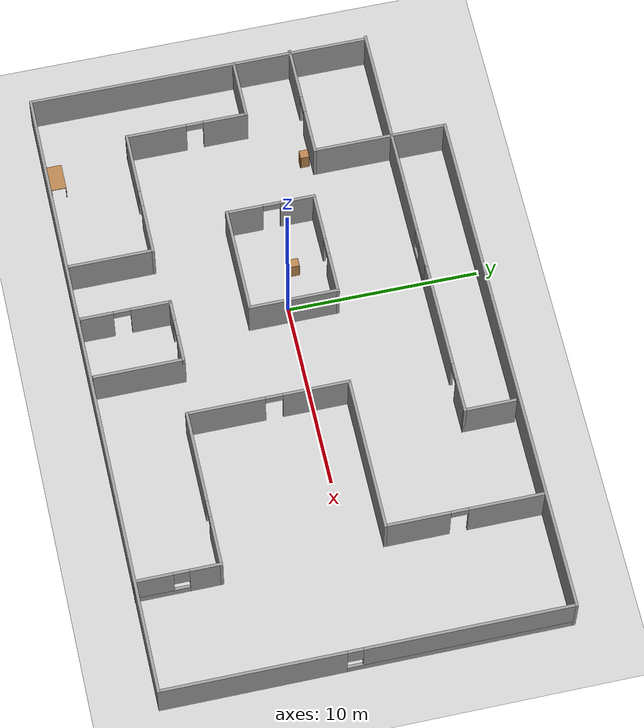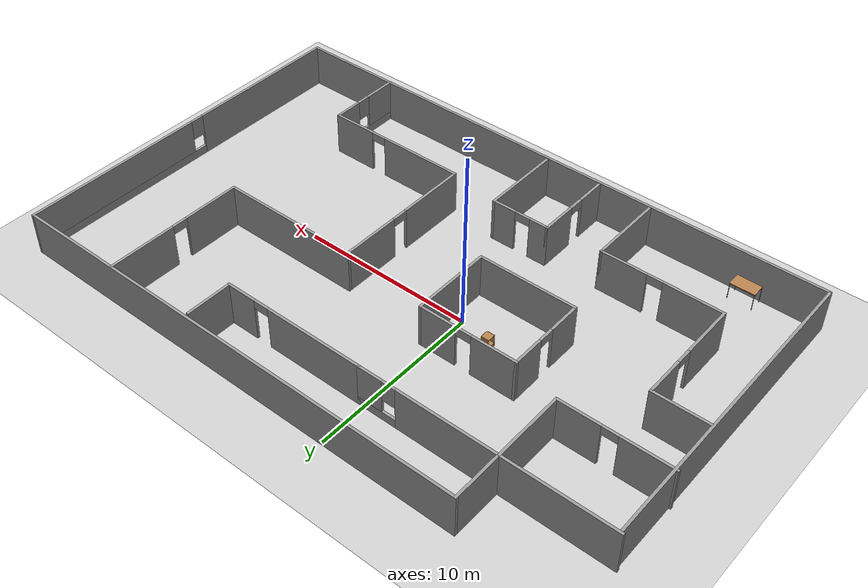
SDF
<sdf version="1.6">
 <world name="default">
  <model name="ground_plane">
   <static>1</static>
   <link name="link">
    <collision name="collision">
     <geometry><plane><normal>0 0 1</normal><size>100 100</size></plane></geometry>
     <surface><friction><ode><mu>100</mu><mu2>50</mu2></ode></friction></surface>
    </collision>
    <visual name="visual">
     <cast_shadows>0</cast_shadows>
     <geometry><plane><normal>0 0 1</normal><size>100 100</size></plane></geometry>
     <material>
      <script><uri>file://media/materials/scripts/gazebo.material</uri><name>Gazebo/Grey</name></script>
     </material>
    </visual>
   </link>
  </model>
  <model name="myworld2.world">
   <pose>3.1644 -0.391877 0 0 -0 0</pose>
   <link name="Wall_11">
    <collision name="Wall_11_Collision">
     <geometry><box><size>18 0.15 2.5</size></box></geometry>
     <pose>0 0 1.25 0 -0 0</pose>
    </collision>
    <visual name="Wall_11_Visual">
     <pose>0 0 1.25 0 -0 0</pose>
     <geometry><box><size>18 0.15 2.5</size></box></geometry>
     <material>
      <script><uri>file://media/materials/scripts/gazebo.material</uri><name>Gazebo/Grey</name></script>
      <ambient>1 1 1 1</ambient>
     </material>
    </visual>
    <pose>-16.75 -1.4938 0 0 0 -1.5708</pose>
   </link>
   <link name="Wall_12">
    <collision name="Wall_12_Collision">
     <geometry><box><size>33.75 0.15 2.5</size></box></geometry>
     <pose>0 0 1.25 0 -0 0</pose>
    </collision>
    <visual name="Wall_12_Visual">
     <pose>0 0 1.25 0 -0 0</pose>
     <geometry><box><size>33.75 0.15 2.5</size></box></geometry>
     <material>
      <script><uri>file://media/materials/scripts/gazebo.material</uri><name>Gazebo/Grey</name></script>
      <ambient>1 1 1 1</ambient>
     </material>
    </visual>
    <pose>0.05 -10.4188 0 0 -0 0</pose>
   </link>
   <link name="Wall_13">
    <pose>16.85 0.006203 0 0 -0 1.5708</pose>
    <visual name="Wall_13_Visual_0">
     <pose>-5.77676 0 1.25 0 -0 0</pose>
     <geometry><box><size>9.44648 0.15 2.5</size></box></geometry>
     <material>
      <script><uri>file://media/materials/scripts/gazebo.material</uri><name>Gazebo/Grey</name></script>
      <ambient>1 1 1 1</ambient>
     </material>
    </visual>
    <collision name="Wall_13_Collision_0">
     <geometry><box><size>9.44648 0.15 2.5</size></box></geometry>
     <pose>-5.77676 0 1.25 0 -0 0</pose>
    </collision>
    <visual name="Wall_13_Visual_1">
     <pose>4.72324 0 0.25 0 -0 0</pose>
     <geometry><box><size>11.5535 0.15 0.5</size></box></geometry>
     <material>
      <script><uri>file://media/materials/scripts/gazebo.material</uri><name>Gazebo/Grey</name></script>
      <ambient>1 1 1 1</ambient>
     </material>
    </visual>
    <collision name="Wall_13_Collision_1">
     <geometry><box><size>11.5535 0.15 0.5</size></box></geometry>
     <pose>4.72324 0 0.25 0 -0 0</pose>
    </collision>
    <visual name="Wall_13_Visual_2">
     <pose>5.12324 0 1.5 0 -0 0</pose>
     <geometry><box><size>10.7535 0.15 2</size></box></geometry>
     <material>
      <script><uri>file://media/materials/scripts/gazebo.material</uri><name>Gazebo/Grey</name></script>
      <ambient>1 1 1 1</ambient>
     </material>
    </visual>
    <collision name="Wall_13_Collision_2">
     <geometry><box><size>10.7535 0.15 2</size></box></geometry>
     <pose>5.12324 0 1.5 0 -0 0</pose>
    </collision>
    <visual name="Wall_13_Visual_3">
     <pose>-0.653517 0 1.9 0 -0 0</pose>
     <geometry><box><size>0.8 0.15 1.2</size></box></geometry>
     <material>
      <script><uri>file://media/materials/scripts/gazebo.material</uri><name>Gazebo/Grey</name></script>
      <ambient>1 1 1 1</ambient>
     </material>
    </visual>
    <collision name="Wall_13_Collision_3">
     <geometry><box><size>0.8 0.15 1.2</size></box></geometry>
     <pose>-0.653517 0 1.9 0 -0 0</pose>
    </collision>
   </link>
   <link name="Wall_14">
    <collision name="Wall_14_Collision">
     <geometry><box><size>27.75 0.15 2.5</size></box></geometry>
     <pose>0 0 1.25 0 -0 0</pose>
    </collision>
    <visual name="Wall_14_Visual">
     <pose>0 0 1.25 0 -0 0</pose>
     <geometry><box><size>27.75 0.15 2.5</size></box></geometry>
     <material>
      <script><uri>file://media/materials/scripts/gazebo.material</uri><name>Gazebo/Grey</name></script>
      <ambient>1 1 1 1</ambient>
     </material>
    </visual>
    <pose>3.05 10.4312 0 0 -0 3.14159</pose>
   </link>
   <link name="Wall_15">
    <collision name="Wall_15_Collision">
     <geometry><box><size>3 0.15 2.5</size></box></geometry>
     <pose>0 0 1.25 0 -0 0</pose>
    </collision>
    <visual name="Wall_15_Visual">
     <pose>0 0 1.25 0 -0 0</pose>
     <geometry><box><size>3 0.15 2.5</size></box></geometry>
     <material>
      <script><uri>file://media/materials/scripts/gazebo.material</uri><name>Gazebo/Grey</name></script>
      <ambient>1 1 1 1</ambient>
     </material>
    </visual>
    <pose>-10.75 9.0062 0 0 0 -1.5708</pose>
   </link>
   <link name="Wall_18">
    <collision name="Wall_18_Collision">
     <geometry><box><size>6.25 0.15 2.5</size></box></geometry>
     <pose>0 0 1.25 0 -0 0</pose>
    </collision>
    <visual name="Wall_18_Visual">
     <pose>0 0 1.25 0 -0 0</pose>
     <geometry><box><size>6.25 0.15 2.5</size></box></geometry>
     <material>
      <script><uri>file://media/materials/scripts/gazebo.material</uri><name>Gazebo/Grey</name></script>
      <ambient>1 1 1 1</ambient>
     </material>
    </visual>
    <pose>-13.8 7.5812 0 0 -0 3.14159</pose>
   </link>
   <link name="Wall_20">
    <collision name="Wall_20_Collision">
     <geometry><box><size>4.25 0.15 2.5</size></box></geometry>
     <pose>0 0 1.25 0 -0 0</pose>
    </collision>
    <visual name="Wall_20_Visual">
     <pose>0 0 1.25 0 -0 0</pose>
     <geometry><box><size>4.25 0.15 2.5</size></box></geometry>
     <material>
      <script><uri>file://media/materials/scripts/gazebo.material</uri><name>Gazebo/Grey</name></script>
      <ambient>1 1 1 1</ambient>
     </material>
    </visual>
    <pose>-10.75 5.5312 0 0 0 -1.5708</pose>
   </link>
   <link name="Wall_22">
    <pose>-13.8 3.4812 0 0 -0 3.14159</pose>
    <visual name="Wall_22_Visual_0">
     <pose>-1.90313 0 1.25 0 -0 0</pose>
     <geometry><box><size>2.44374 0.15 2.5</size></box></geometry>
     <material>
      <script><uri>file://media/materials/scripts/gazebo.material</uri><name>Gazebo/Grey</name></script>
      <ambient>1 1 1 1</ambient>
     </material>
    </visual>
    <collision name="Wall_22_Collision_0">
     <geometry><box><size>2.44374 0.15 2.5</size></box></geometry>
     <pose>-1.90313 0 1.25 0 -0 0</pose>
    </collision>
    <visual name="Wall_22_Visual_1">
     <pose>1.67187 0 1.25 0 -0 0</pose>
     <geometry><box><size>2.90626 0.15 2.5</size></box></geometry>
     <material>
      <script><uri>file://media/materials/scripts/gazebo.material</uri><name>Gazebo/Grey</name></script>
      <ambient>1 1 1 1</ambient>
     </material>
    </visual>
    <collision name="Wall_22_Collision_1">
     <geometry><box><size>2.90626 0.15 2.5</size></box></geometry>
     <pose>1.67187 0 1.25 0 -0 0</pose>
    </collision>
    <visual name="Wall_22_Visual_2">
     <pose>-0.231259 0 2.25 0 -0 0</pose>
     <geometry><box><size>0.9 0.15 0.5</size></box></geometry>
     <material>
      <script><uri>file://media/materials/scripts/gazebo.material</uri><name>Gazebo/Grey</name></script>
      <ambient>1 1 1 1</ambient>
     </material>
    </visual>
    <collision name="Wall_22_Collision_2">
     <geometry><box><size>0.9 0.15 0.5</size></box></geometry>
     <pose>-0.231259 0 2.25 0 -0 0</pose>
    </collision>
   </link>
   <link name="Wall_24">
    <collision name="Wall_24_Collision">
     <geometry><box><size>3.25 0.15 2.5</size></box></geometry>
     <pose>0 0 1.25 0 -0 0</pose>
    </collision>
    <visual name="Wall_24_Visual">
     <pose>0 0 1.25 0 -0 0</pose>
     <geometry><box><size>3.25 0.15 2.5</size></box></geometry>
     <material>
      <script><uri>file://media/materials/scripts/gazebo.material</uri><name>Gazebo/Grey</name></script>
      <ambient>1 1 1 1</ambient>
     </material>
    </visual>
    <pose>-15.1851 0.43675 0 0 -0 0</pose>
   </link>
   <link name="Wall_25">
    <pose>-13.6351 -2.73825 0 0 0 -1.5708</pose>
    <visual name="Wall_25_Visual_0">
     <pose>-2.06306 0 1.25 0 -0 0</pose>
     <geometry><box><size>2.37387 0.15 2.5</size></box></geometry>
     <material>
      <script><uri>file://media/materials/scripts/gazebo.material</uri><name>Gazebo/Grey</name></script>
      <ambient>1 1 1 1</ambient>
     </material>
    </visual>
    <collision name="Wall_25_Collision_0">
     <geometry><box><size>2.37387 0.15 2.5</size></box></geometry>
     <pose>-2.06306 0 1.25 0 -0 0</pose>
    </collision>
    <visual name="Wall_25_Visual_1">
     <pose>1.63694 0 1.25 0 -0 0</pose>
     <geometry><box><size>3.22613 0.15 2.5</size></box></geometry>
     <material>
      <script><uri>file://media/materials/scripts/gazebo.material</uri><name>Gazebo/Grey</name></script>
      <ambient>1 1 1 1</ambient>
     </material>
    </visual>
    <collision name="Wall_25_Collision_1">
     <geometry><box><size>3.22613 0.15 2.5</size></box></geometry>
     <pose>1.63694 0 1.25 0 -0 0</pose>
    </collision>
    <visual name="Wall_25_Visual_2">
     <pose>-0.426125 0 2.25 0 -0 0</pose>
     <geometry><box><size>0.9 0.15 0.5</size></box></geometry>
     <material>
      <script><uri>file://media/materials/scripts/gazebo.material</uri><name>Gazebo/Grey</name></script>
      <ambient>1 1 1 1</ambient>
     </material>
    </visual>
    <collision name="Wall_25_Collision_2">
     <geometry><box><size>0.9 0.15 0.5</size></box></geometry>
     <pose>-0.426125 0 2.25 0 -0 0</pose>
    </collision>
   </link>
   <link name="Wall_26">
    <pose>-10.2101 -5.91325 0 0 -0 0</pose>
    <visual name="Wall_26_Visual_0">
     <pose>-1.80938 0 1.25 0 -0 0</pose>
     <geometry><box><size>3.38123 0.15 2.5</size></box></geometry>
     <material>
      <script><uri>file://media/materials/scripts/gazebo.material</uri><name>Gazebo/Grey</name></script>
      <ambient>1 1 1 1</ambient>
     </material>
    </visual>
    <collision name="Wall_26_Collision_0">
     <geometry><box><size>3.38123 0.15 2.5</size></box></geometry>
     <pose>-1.80938 0 1.25 0 -0 0</pose>
    </collision>
    <visual name="Wall_26_Visual_1">
     <pose>2.14062 0 1.25 0 -0 0</pose>
     <geometry><box><size>2.71877 0.15 2.5</size></box></geometry>
     <material>
      <script><uri>file://media/materials/scripts/gazebo.material</uri><name>Gazebo/Grey</name></script>
      <ambient>1 1 1 1</ambient>
     </material>
    </visual>
    <collision name="Wall_26_Collision_1">
     <geometry><box><size>2.71877 0.15 2.5</size></box></geometry>
     <pose>2.14062 0 1.25 0 -0 0</pose>
    </collision>
    <visual name="Wall_26_Visual_2">
     <pose>0.331232 0 2.25 0 -0 0</pose>
     <geometry><box><size>0.9 0.15 0.5</size></box></geometry>
     <material>
      <script><uri>file://media/materials/scripts/gazebo.material</uri><name>Gazebo/Grey</name></script>
      <ambient>1 1 1 1</ambient>
     </material>
    </visual>
    <collision name="Wall_26_Collision_2">
     <geometry><box><size>0.9 0.15 0.5</size></box></geometry>
     <pose>0.331232 0 2.25 0 -0 0</pose>
    </collision>
   </link>
   <link name="Wall_27">
    <collision name="Wall_27_Collision">
     <geometry><box><size>4.5 0.15 2.5</size></box></geometry>
     <pose>0 0 1.25 0 -0 0</pose>
    </collision>
    <visual name="Wall_27_Visual">
     <pose>0 0 1.25 0 -0 0</pose>
     <geometry><box><size>4.5 0.15 2.5</size></box></geometry>
     <material>
      <script><uri>file://media/materials/scripts/gazebo.material</uri><name>Gazebo/Grey</name></script>
      <ambient>1 1 1 1</ambient>
     </material>
    </visual>
    <pose>-6.78515 -8.08825 0 0 0 -1.5708</pose>
   </link>
   <link name="Wall_29">
    <pose>-8.11483 0.547824 0 0 0 -1.5708</pose>
    <visual name="Wall_29_Visual_0">
     <pose>-1.4379 0 1.25 0 -0 0</pose>
     <geometry><box><size>1.87421 0.15 2.5</size></box></geometry>
     <material>
      <script><uri>file://media/materials/scripts/gazebo.material</uri><name>Gazebo/Grey</name></script>
      <ambient>1 1 1 1</ambient>
     </material>
    </visual>
    <collision name="Wall_29_Collision_0">
     <geometry><box><size>1.87421 0.15 2.5</size></box></geometry>
     <pose>-1.4379 0 1.25 0 -0 0</pose>
    </collision>
    <visual name="Wall_29_Visual_1">
     <pose>1.3871 0 1.25 0 -0 0</pose>
     <geometry><box><size>1.97579 0.15 2.5</size></box></geometry>
     <material>
      <script><uri>file://media/materials/scripts/gazebo.material</uri><name>Gazebo/Grey</name></script>
      <ambient>1 1 1 1</ambient>
     </material>
    </visual>
    <collision name="Wall_29_Collision_1">
     <geometry><box><size>1.97579 0.15 2.5</size></box></geometry>
     <pose>1.3871 0 1.25 0 -0 0</pose>
    </collision>
    <visual name="Wall_29_Visual_2">
     <pose>-0.050792 0 2.25 0 -0 0</pose>
     <geometry><box><size>0.9 0.15 0.5</size></box></geometry>
     <material>
      <script><uri>file://media/materials/scripts/gazebo.material</uri><name>Gazebo/Grey</name></script>
      <ambient>1 1 1 1</ambient>
     </material>
    </visual>
    <collision name="Wall_29_Collision_2">
     <geometry><box><size>0.9 0.15 0.5</size></box></geometry>
     <pose>-0.050792 0 2.25 0 -0 0</pose>
    </collision>
   </link>
   <link name="Wall_30">
    <collision name="Wall_30_Collision">
     <geometry><box><size>5.75 0.15 2.5</size></box></geometry>
     <pose>0 0 1.25 0 -0 0</pose>
    </collision>
    <visual name="Wall_30_Visual">
     <pose>0 0 1.25 0 -0 0</pose>
     <geometry><box><size>5.75 0.15 2.5</size></box></geometry>
     <material>
      <script><uri>file://media/materials/scripts/gazebo.material</uri><name>Gazebo/Grey</name></script>
      <ambient>1 1 1 1</ambient>
     </material>
    </visual>
    <pose>-5.31483 -1.75218 0 0 -0 0</pose>
   </link>
   <link name="Wall_31">
    <collision name="Wall_31_Collision">
     <geometry><box><size>4.75 0.15 2.5</size></box></geometry>
     <pose>0 0 1.25 0 -0 0</pose>
    </collision>
    <visual name="Wall_31_Visual">
     <pose>0 0 1.25 0 -0 0</pose>
     <geometry><box><size>4.75 0.15 2.5</size></box></geometry>
     <material>
      <script><uri>file://media/materials/scripts/gazebo.material</uri><name>Gazebo/Grey</name></script>
      <ambient>1 1 1 1</ambient>
     </material>
    </visual>
    <pose>-2.51483 0.547824 0 0 -0 1.5708</pose>
   </link>
   <link name="Wall_32">
    <pose>-5.31483 2.84782 0 0 -0 3.14159</pose>
    <visual name="Wall_32_Visual_0">
     <pose>-1.76197 0 1.25 0 -0 0</pose>
     <geometry><box><size>2.22606 0.15 2.5</size></box></geometry>
     <material>
      <script><uri>file://media/materials/scripts/gazebo.material</uri><name>Gazebo/Grey</name></script>
      <ambient>1 1 1 1</ambient>
     </material>
    </visual>
    <collision name="Wall_32_Collision_0">
     <geometry><box><size>2.22606 0.15 2.5</size></box></geometry>
     <pose>-1.76197 0 1.25 0 -0 0</pose>
    </collision>
    <visual name="Wall_32_Visual_1">
     <pose>1.56303 0 1.25 0 -0 0</pose>
     <geometry><box><size>2.62394 0.15 2.5</size></box></geometry>
     <material>
      <script><uri>file://media/materials/scripts/gazebo.material</uri><name>Gazebo/Grey</name></script>
      <ambient>1 1 1 1</ambient>
     </material>
    </visual>
    <collision name="Wall_32_Collision_1">
     <geometry><box><size>2.62394 0.15 2.5</size></box></geometry>
     <pose>1.56303 0 1.25 0 -0 0</pose>
    </collision>
    <visual name="Wall_32_Visual_2">
     <pose>-0.198945 0 2.25 0 -0 0</pose>
     <geometry><box><size>0.9 0.15 0.5</size></box></geometry>
     <material>
      <script><uri>file://media/materials/scripts/gazebo.material</uri><name>Gazebo/Grey</name></script>
      <ambient>1 1 1 1</ambient>
     </material>
    </visual>
    <collision name="Wall_32_Collision_2">
     <geometry><box><size>0.9 0.15 0.5</size></box></geometry>
     <pose>-0.198945 0 2.25 0 -0 0</pose>
    </collision>
   </link>
   <link name="Wall_34">
    <pose>-6.825 7.5812 0 0 -0 0</pose>
    <visual name="Wall_34_Visual_0">
     <pose>-1.12533 0 1.25 0 -0 0</pose>
     <geometry><box><size>5.74934 0.15 2.5</size></box></geometry>
     <material>
      <script><uri>file://media/materials/scripts/gazebo.material</uri><name>Gazebo/Grey</name></script>
      <ambient>1 1 1 1</ambient>
     </material>
    </visual>
    <collision name="Wall_34_Collision_0">
     <geometry><box><size>5.74934 0.15 2.5</size></box></geometry>
     <pose>-1.12533 0 1.25 0 -0 0</pose>
    </collision>
    <visual name="Wall_34_Visual_1">
     <pose>2.87467 0 0.25 0 -0 0</pose>
     <geometry><box><size>2.25066 0.15 0.5</size></box></geometry>
     <material>
      <script><uri>file://media/materials/scripts/gazebo.material</uri><name>Gazebo/Grey</name></script>
      <ambient>1 1 1 1</ambient>
     </material>
    </visual>
    <collision name="Wall_34_Collision_1">
     <geometry><box><size>2.25066 0.15 0.5</size></box></geometry>
     <pose>2.87467 0 0.25 0 -0 0</pose>
    </collision>
    <visual name="Wall_34_Visual_2">
     <pose>3.27467 0 1.5 0 -0 0</pose>
     <geometry><box><size>1.45066 0.15 2</size></box></geometry>
     <material>
      <script><uri>file://media/materials/scripts/gazebo.material</uri><name>Gazebo/Grey</name></script>
      <ambient>1 1 1 1</ambient>
     </material>
    </visual>
    <collision name="Wall_34_Collision_2">
     <geometry><box><size>1.45066 0.15 2</size></box></geometry>
     <pose>3.27467 0 1.5 0 -0 0</pose>
    </collision>
    <visual name="Wall_34_Visual_3">
     <pose>2.14934 0 1.9 0 -0 0</pose>
     <geometry><box><size>0.8 0.15 1.2</size></box></geometry>
     <material>
      <script><uri>file://media/materials/scripts/gazebo.material</uri><name>Gazebo/Grey</name></script>
      <ambient>1 1 1 1</ambient>
     </material>
    </visual>
    <collision name="Wall_34_Collision_3">
     <geometry><box><size>0.8 0.15 1.2</size></box></geometry>
     <pose>2.14934 0 1.9 0 -0 0</pose>
    </collision>
   </link>
   <link name="Wall_35">
    <pose>1.275 7.5812 0 0 -0 0</pose>
    <visual name="Wall_35_Visual_0">
     <pose>-1.35831 0 1.25 0 -0 0</pose>
     <geometry><box><size>5.78337 0.15 2.5</size></box></geometry>
     <material>
      <script><uri>file://media/materials/scripts/gazebo.material</uri><name>Gazebo/Grey</name></script>
      <ambient>1 1 1 1</ambient>
     </material>
    </visual>
    <collision name="Wall_35_Collision_0">
     <geometry><box><size>5.78337 0.15 2.5</size></box></geometry>
     <pose>-1.35831 0 1.25 0 -0 0</pose>
    </collision>
    <visual name="Wall_35_Visual_1">
     <pose>3.34169 0 1.25 0 -0 0</pose>
     <geometry><box><size>1.81663 0.15 2.5</size></box></geometry>
     <material>
      <script><uri>file://media/materials/scripts/gazebo.material</uri><name>Gazebo/Grey</name></script>
      <ambient>1 1 1 1</ambient>
     </material>
    </visual>
    <collision name="Wall_35_Collision_1">
     <geometry><box><size>1.81663 0.15 2.5</size></box></geometry>
     <pose>3.34169 0 1.25 0 -0 0</pose>
    </collision>
    <visual name="Wall_35_Visual_2">
     <pose>1.98337 0 2.25 0 -0 0</pose>
     <geometry><box><size>0.9 0.15 0.5</size></box></geometry>
     <material>
      <script><uri>file://media/materials/scripts/gazebo.material</uri><name>Gazebo/Grey</name></script>
      <ambient>1 1 1 1</ambient>
     </material>
    </visual>
    <collision name="Wall_35_Collision_2">
     <geometry><box><size>0.9 0.15 0.5</size></box></geometry>
     <pose>1.98337 0 2.25 0 -0 0</pose>
    </collision>
   </link>
   <link name="Wall_36">
    <collision name="Wall_36_Collision">
     <geometry><box><size>2.75 0.15 2.5</size></box></geometry>
     <pose>0 0 1.25 0 -0 0</pose>
    </collision>
    <visual name="Wall_36_Visual">
     <pose>0 0 1.25 0 -0 0</pose>
     <geometry><box><size>2.75 0.15 2.5</size></box></geometry>
     <material>
      <script><uri>file://media/materials/scripts/gazebo.material</uri><name>Gazebo/Grey</name></script>
      <ambient>1 1 1 1</ambient>
     </material>
    </visual>
    <pose>5.45 8.8812 0 0 -0 1.5708</pose>
   </link>
   <link name="Wall_38">
    <pose>10.7452 6.3188 0 0 0 -1.5708</pose>
    <visual name="Wall_38_Visual_0">
     <pose>-2.14476 0 1.25 0 -0 0</pose>
     <geometry><box><size>3.96048 0.15 2.5</size></box></geometry>
     <material>
      <script><uri>file://media/materials/scripts/gazebo.material</uri><name>Gazebo/Grey</name></script>
      <ambient>1 1 1 1</ambient>
     </material>
    </visual>
    <collision name="Wall_38_Collision_0">
     <geometry><box><size>3.96048 0.15 2.5</size></box></geometry>
     <pose>-2.14476 0 1.25 0 -0 0</pose>
    </collision>
    <visual name="Wall_38_Visual_1">
     <pose>2.43024 0 1.25 0 -0 0</pose>
     <geometry><box><size>3.38952 0.15 2.5</size></box></geometry>
     <material>
      <script><uri>file://media/materials/scripts/gazebo.material</uri><name>Gazebo/Grey</name></script>
      <ambient>1 1 1 1</ambient>
     </material>
    </visual>
    <collision name="Wall_38_Collision_1">
     <geometry><box><size>3.38952 0.15 2.5</size></box></geometry>
     <pose>2.43024 0 1.25 0 -0 0</pose>
    </collision>
    <visual name="Wall_38_Visual_2">
     <pose>0.285484 0 2.25 0 -0 0</pose>
     <geometry><box><size>0.9 0.15 0.5</size></box></geometry>
     <material>
      <script><uri>file://media/materials/scripts/gazebo.material</uri><name>Gazebo/Grey</name></script>
      <ambient>1 1 1 1</ambient>
     </material>
    </visual>
    <collision name="Wall_38_Collision_2">
     <geometry><box><size>0.9 0.15 0.5</size></box></geometry>
     <pose>0.285484 0 2.25 0 -0 0</pose>
    </collision>
   </link>
   <link name="Wall_39">
    <collision name="Wall_39_Collision">
     <geometry><box><size>8.25 0.15 2.5</size></box></geometry>
     <pose>0 0 1.25 0 -0 0</pose>
    </collision>
    <visual name="Wall_39_Visual">
     <pose>0 0 1.25 0 -0 0</pose>
     <geometry><box><size>8.25 0.15 2.5</size></box></geometry>
     <material>
      <script><uri>file://media/materials/scripts/gazebo.material</uri><name>Gazebo/Grey</name></script>
      <ambient>1 1 1 1</ambient>
     </material>
    </visual>
    <pose>6.69523 2.2688 0 0 -0 3.14159</pose>
   </link>
   <link name="Wall_40">
    <pose>2.64523 -1.9062 0 0 0 -1.5708</pose>
    <visual name="Wall_40_Visual_0">
     <pose>-2.5013 0 1.25 0 -0 0</pose>
     <geometry><box><size>3.49741 0.15 2.5</size></box></geometry>
     <material>
      <script><uri>file://media/materials/scripts/gazebo.material</uri><name>Gazebo/Grey</name></script>
      <ambient>1 1 1 1</ambient>
     </material>
    </visual>
    <collision name="Wall_40_Collision_0">
     <geometry><box><size>3.49741 0.15 2.5</size></box></geometry>
     <pose>-2.5013 0 1.25 0 -0 0</pose>
    </collision>
    <visual name="Wall_40_Visual_1">
     <pose>2.1987 0 1.25 0 -0 0</pose>
     <geometry><box><size>4.10259 0.15 2.5</size></box></geometry>
     <material>
      <script><uri>file://media/materials/scripts/gazebo.material</uri><name>Gazebo/Grey</name></script>
      <ambient>1 1 1 1</ambient>
     </material>
    </visual>
    <collision name="Wall_40_Collision_1">
     <geometry><box><size>4.10259 0.15 2.5</size></box></geometry>
     <pose>2.1987 0 1.25 0 -0 0</pose>
    </collision>
    <visual name="Wall_40_Visual_2">
     <pose>-0.302592 0 2.25 0 -0 0</pose>
     <geometry><box><size>0.9 0.15 0.5</size></box></geometry>
     <material>
      <script><uri>file://media/materials/scripts/gazebo.material</uri><name>Gazebo/Grey</name></script>
      <ambient>1 1 1 1</ambient>
     </material>
    </visual>
    <collision name="Wall_40_Collision_2">
     <geometry><box><size>0.9 0.15 0.5</size></box></geometry>
     <pose>-0.302592 0 2.25 0 -0 0</pose>
    </collision>
   </link>
   <link name="Wall_41">
    <pose>6.82023 -6.0812 0 0 -0 0</pose>
    <visual name="Wall_41_Visual_0">
     <pose>-1.76501 0 1.25 0 -0 0</pose>
     <geometry><box><size>4.96999 0.15 2.5</size></box></geometry>
     <material>
      <script><uri>file://media/materials/scripts/gazebo.material</uri><name>Gazebo/Grey</name></script>
      <ambient>1 1 1 1</ambient>
     </material>
    </visual>
    <collision name="Wall_41_Collision_0">
     <geometry><box><size>4.96999 0.15 2.5</size></box></geometry>
     <pose>-1.76501 0 1.25 0 -0 0</pose>
    </collision>
    <visual name="Wall_41_Visual_1">
     <pose>2.93499 0 1.25 0 -0 0</pose>
     <geometry><box><size>2.63001 0.15 2.5</size></box></geometry>
     <material>
      <script><uri>file://media/materials/scripts/gazebo.material</uri><name>Gazebo/Grey</name></script>
      <ambient>1 1 1 1</ambient>
     </material>
    </visual>
    <collision name="Wall_41_Collision_1">
     <geometry><box><size>2.63001 0.15 2.5</size></box></geometry>
     <pose>2.93499 0 1.25 0 -0 0</pose>
    </collision>
    <visual name="Wall_41_Visual_2">
     <pose>1.16999 0 2.25 0 -0 0</pose>
     <geometry><box><size>0.9 0.15 0.5</size></box></geometry>
     <material>
      <script><uri>file://media/materials/scripts/gazebo.material</uri><name>Gazebo/Grey</name></script>
      <ambient>1 1 1 1</ambient>
     </material>
    </visual>
    <collision name="Wall_41_Collision_2">
     <geometry><box><size>0.9 0.15 0.5</size></box></geometry>
     <pose>1.16999 0 2.25 0 -0 0</pose>
    </collision>
   </link>
   <link name="Wall_42">
    <pose>10.9952 -8.2562 0 0 0 -1.5708</pose>
    <visual name="Wall_42_Visual_0">
     <pose>-1.41232 0 1.25 0 -0 0</pose>
     <geometry><box><size>1.67535 0.15 2.5</size></box></geometry>
     <material>
      <script><uri>file://media/materials/scripts/gazebo.material</uri><name>Gazebo/Grey</name></script>
      <ambient>1 1 1 1</ambient>
     </material>
    </visual>
    <collision name="Wall_42_Collision_0">
     <geometry><box><size>1.67535 0.15 2.5</size></box></geometry>
     <pose>-1.41232 0 1.25 0 -0 0</pose>
    </collision>
    <visual name="Wall_42_Visual_1">
     <pose>0.837676 0 0.25 0 -0 0</pose>
     <geometry><box><size>2.82465 0.15 0.5</size></box></geometry>
     <material>
      <script><uri>file://media/materials/scripts/gazebo.material</uri><name>Gazebo/Grey</name></script>
      <ambient>1 1 1 1</ambient>
     </material>
    </visual>
    <collision name="Wall_42_Collision_1">
     <geometry><box><size>2.82465 0.15 0.5</size></box></geometry>
     <pose>0.837676 0 0.25 0 -0 0</pose>
    </collision>
    <visual name="Wall_42_Visual_2">
     <pose>1.23768 0 1.5 0 -0 0</pose>
     <geometry><box><size>2.02465 0.15 2</size></box></geometry>
     <material>
      <script><uri>file://media/materials/scripts/gazebo.material</uri><name>Gazebo/Grey</name></script>
      <ambient>1 1 1 1</ambient>
     </material>
    </visual>
    <collision name="Wall_42_Collision_2">
     <geometry><box><size>2.02465 0.15 2</size></box></geometry>
     <pose>1.23768 0 1.5 0 -0 0</pose>
    </collision>
    <visual name="Wall_42_Visual_3">
     <pose>-0.174648 0 1.9 0 -0 0</pose>
     <geometry><box><size>0.8 0.15 1.2</size></box></geometry>
     <material>
      <script><uri>file://media/materials/scripts/gazebo.material</uri><name>Gazebo/Grey</name></script>
      <ambient>1 1 1 1</ambient>
     </material>
    </visual>
    <collision name="Wall_42_Collision_3">
     <geometry><box><size>0.8 0.15 1.2</size></box></geometry>
     <pose>-0.174648 0 1.9 0 -0 0</pose>
    </collision>
   </link>
   <link name="Wall_45">
    <pose>-3.70242 -7.93505 0 0 -0 1.5708</pose>
    <visual name="Wall_45_Visual_0">
     <pose>-1.51883 0 1.25 0 -0 0</pose>
     <geometry><box><size>1.71234 0.15 2.5</size></box></geometry>
     <material>
      <script><uri>file://media/materials/scripts/gazebo.material</uri><name>Gazebo/Grey</name></script>
      <ambient>1 1 1 1</ambient>
     </material>
    </visual>
    <collision name="Wall_45_Collision_0">
     <geometry><box><size>1.71234 0.15 2.5</size></box></geometry>
     <pose>-1.51883 0 1.25 0 -0 0</pose>
    </collision>
    <visual name="Wall_45_Visual_1">
     <pose>1.30617 0 1.25 0 -0 0</pose>
     <geometry><box><size>2.13766 0.15 2.5</size></box></geometry>
     <material>
      <script><uri>file://media/materials/scripts/gazebo.material</uri><name>Gazebo/Grey</name></script>
      <ambient>1 1 1 1</ambient>
     </material>
    </visual>
    <collision name="Wall_45_Collision_1">
     <geometry><box><size>2.13766 0.15 2.5</size></box></geometry>
     <pose>1.30617 0 1.25 0 -0 0</pose>
    </collision>
    <visual name="Wall_45_Visual_2">
     <pose>-0.21266 0 2.25 0 -0 0</pose>
     <geometry><box><size>0.9 0.15 0.5</size></box></geometry>
     <material>
      <script><uri>file://media/materials/scripts/gazebo.material</uri><name>Gazebo/Grey</name></script>
      <ambient>1 1 1 1</ambient>
     </material>
    </visual>
    <collision name="Wall_45_Collision_2">
     <geometry><box><size>0.9 0.15 0.5</size></box></geometry>
     <pose>-0.21266 0 2.25 0 -0 0</pose>
    </collision>
   </link>
   <link name="Wall_46">
    <pose>-2.02743 -5.63505 0 0 -0 0</pose>
    <visual name="Wall_46_Visual_0">
     <pose>-1.1759 0 1.25 0 -0 0</pose>
     <geometry><box><size>1.14819 0.15 2.5</size></box></geometry>
     <material>
      <script><uri>file://media/materials/scripts/gazebo.material</uri><name>Gazebo/Grey</name></script>
      <ambient>1 1 1 1</ambient>
     </material>
    </visual>
    <collision name="Wall_46_Collision_0">
     <geometry><box><size>1.14819 0.15 2.5</size></box></geometry>
     <pose>-1.1759 0 1.25 0 -0 0</pose>
    </collision>
    <visual name="Wall_46_Visual_1">
     <pose>1.0241 0 1.25 0 -0 0</pose>
     <geometry><box><size>1.45181 0.15 2.5</size></box></geometry>
     <material>
      <script><uri>file://media/materials/scripts/gazebo.material</uri><name>Gazebo/Grey</name></script>
      <ambient>1 1 1 1</ambient>
     </material>
    </visual>
    <collision name="Wall_46_Collision_1">
     <geometry><box><size>1.45181 0.15 2.5</size></box></geometry>
     <pose>1.0241 0 1.25 0 -0 0</pose>
    </collision>
    <visual name="Wall_46_Visual_2">
     <pose>-0.151806 0 2.25 0 -0 0</pose>
     <geometry><box><size>0.9 0.15 0.5</size></box></geometry>
     <material>
      <script><uri>file://media/materials/scripts/gazebo.material</uri><name>Gazebo/Grey</name></script>
      <ambient>1 1 1 1</ambient>
     </material>
    </visual>
    <collision name="Wall_46_Collision_2">
     <geometry><box><size>0.9 0.15 0.5</size></box></geometry>
     <pose>-0.151806 0 2.25 0 -0 0</pose>
    </collision>
   </link>
   <link name="Wall_47">
    <collision name="Wall_47_Collision">
     <geometry><box><size>4.75 0.15 2.5</size></box></geometry>
     <pose>0 0 1.25 0 -0 0</pose>
    </collision>
    <visual name="Wall_47_Visual">
     <pose>0 0 1.25 0 -0 0</pose>
     <geometry><box><size>4.75 0.15 2.5</size></box></geometry>
     <material>
      <script><uri>file://media/materials/scripts/gazebo.material</uri><name>Gazebo/Grey</name></script>
      <ambient>1 1 1 1</ambient>
     </material>
    </visual>
    <pose>-0.352425 -7.93505 0 0 0 -1.5708</pose>
   </link>
   <static>1</static>
  </model>
  <model name="cabinet">
   <static>1</static>
   <link name="cabinet_bottom_plate">
    <inertial>
     <pose>0 0 -1 0 -0 0</pose>
     <inertia><ixx>2.05</ixx><ixy>0</ixy><ixz>0</ixz><iyy>2.05</iyy><iyz>0</iyz><izz>2.05</izz></inertia>
     <mass>25</mass>
    </inertial>
    <collision name="cabinet_bottom_plate_geom">
     <pose>0 0 0.01 0 -0 0</pose>
     <geometry><box><size>0.45 0.45 0.02</size></box></geometry>
    </collision>
    <visual name="cabinet_bottom_plate_geom_visual">
     <pose>0 0 0.01 0 -0 0</pose>
     <geometry><box><size>0.45 0.45 0.02</size></box></geometry>
     <material>
      <script><uri>file://media/materials/scripts/gazebo.material</uri><name>Gazebo/Wood</name></script>
     </material>
    </visual>
    <collision name="cabinet_bottom_plate_geom_cabinet_back_plate">
     <pose>0.235 0 0.51 0 -0 0</pose>
     <geometry><box><size>0.02 0.45 1.02</size></box></geometry>
    </collision>
    <visual name="cabinet_bottom_plate_geom_cabinet_back_plate_visual">
     <pose>0.235 0 0.51 0 -0 0</pose>
     <geometry><box><size>0.02 0.45 1.02</size></box></geometry>
     <material>
      <script><uri>file://media/materials/scripts/gazebo.material</uri><name>Gazebo/Wood</name></script>
     </material>
    </visual>
    <collision name="cabinet_bottom_plate_geom_cabinet_left_plate">
     <pose>0 0.235 0.51 0 -0 0</pose>
     <geometry><box><size>0.45 0.02 1.02</size></box></geometry>
    </collision>
    <visual name="cabinet_bottom_plate_geom_cabinet_left_plate_visual">
     <pose>0 0.235 0.51 0 -0 0</pose>
     <geometry><box><size>0.45 0.02 1.02</size></box></geometry>
     <material>
      <script><uri>file://media/materials/scripts/gazebo.material</uri><name>Gazebo/Wood</name></script>
     </material>
    </visual>
    <collision name="cabinet_bottom_plate_geom_cabinet_middle_plate">
     <pose>0 0 0.51 0 -0 0</pose>
     <geometry><box><size>0.45 0.45 0.02</size></box></geometry>
    </collision>
    <visual name="cabinet_bottom_plate_geom_cabinet_middle_plate_visual">
     <pose>0 0 0.51 0 -0 0</pose>
     <geometry><box><size>0.45 0.45 0.02</size></box></geometry>
     <material>
      <script><uri>file://media/materials/scripts/gazebo.material</uri><name>Gazebo/Wood</name></script>
     </material>
    </visual>
    <collision name="cabinet_bottom_plate_geom_cabinet_right_plate">
     <pose>0 -0.235 0.51 0 -0 0</pose>
     <geometry><box><size>0.45 0.02 1.02</size></box></geometry>
    </collision>
    <visual name="cabinet_bottom_plate_geom_cabinet_right_plate_visual">
     <pose>0 -0.235 0.51 0 -0 0</pose>
     <geometry><box><size>0.45 0.02 1.02</size></box></geometry>
     <material>
      <script><uri>file://media/materials/scripts/gazebo.material</uri><name>Gazebo/Wood</name></script>
     </material>
    </visual>
    <collision name="cabinet_bottom_plate_geom_cabinet_top_plate">
     <pose>0 0 1.01 0 -0 0</pose>
     <geometry><box><size>0.45 0.45 0.02</size></box></geometry>
    </collision>
    <visual name="cabinet_bottom_plate_geom_cabinet_top_plate_visual">
     <pose>0 0 1.01 0 -0 0</pose>
     <geometry><box><size>0.45 0.45 0.02</size></box></geometry>
     <material>
      <script><uri>file://media/materials/scripts/gazebo.material</uri><name>Gazebo/Wood</name></script>
     </material>
    </visual>
   </link>
   <pose>-8.29466 2.67213 0 0 -0 0</pose>
  </model>
  <model name="cabinet_0">
   <static>1</static>
   <link name="cabinet_bottom_plate">
    <inertial>
     <pose>0 0 -1 0 -0 0</pose>
     <inertia><ixx>2.05</ixx><ixy>0</ixy><ixz>0</ixz><iyy>2.05</iyy><iyz>0</iyz><izz>2.05</izz></inertia>
     <mass>25</mass>
    </inertial>
    <collision name="cabinet_bottom_plate_geom">
     <pose>0 0 0.01 0 -0 0</pose>
     <geometry><box><size>0.45 0.45 0.02</size></box></geometry>
    </collision>
    <visual name="cabinet_bottom_plate_geom_visual">
     <pose>0 0 0.01 0 -0 0</pose>
     <geometry><box><size>0.45 0.45 0.02</size></box></geometry>
     <material>
      <script><uri>file://media/materials/scripts/gazebo.material</uri><name>Gazebo/Wood</name></script>
     </material>
    </visual>
    <collision name="cabinet_bottom_plate_geom_cabinet_back_plate">
     <pose>0.235 0 0.51 0 -0 0</pose>
     <geometry><box><size>0.02 0.45 1.02</size></box></geometry>
    </collision>
    <visual name="cabinet_bottom_plate_geom_cabinet_back_plate_visual">
     <pose>0.235 0 0.51 0 -0 0</pose>
     <geometry><box><size>0.02 0.45 1.02</size></box></geometry>
     <material>
      <script><uri>file://media/materials/scripts/gazebo.material</uri><name>Gazebo/Wood</name></script>
     </material>
    </visual>
    <collision name="cabinet_bottom_plate_geom_cabinet_left_plate">
     <pose>0 0.235 0.51 0 -0 0</pose>
     <geometry><box><size>0.45 0.02 1.02</size></box></geometry>
    </collision>
    <visual name="cabinet_bottom_plate_geom_cabinet_left_plate_visual">
     <pose>0 0.235 0.51 0 -0 0</pose>
     <geometry><box><size>0.45 0.02 1.02</size></box></geometry>
     <material>
      <script><uri>file://media/materials/scripts/gazebo.material</uri><name>Gazebo/Wood</name></script>
     </material>
    </visual>
    <collision name="cabinet_bottom_plate_geom_cabinet_middle_plate">
     <pose>0 0 0.51 0 -0 0</pose>
     <geometry><box><size>0.45 0.45 0.02</size></box></geometry>
    </collision>
    <visual name="cabinet_bottom_plate_geom_cabinet_middle_plate_visual">
     <pose>0 0 0.51 0 -0 0</pose>
     <geometry><box><size>0.45 0.45 0.02</size></box></geometry>
     <material>
      <script><uri>file://media/materials/scripts/gazebo.material</uri><name>Gazebo/Wood</name></script>
     </material>
    </visual>
    <collision name="cabinet_bottom_plate_geom_cabinet_right_plate">
     <pose>0 -0.235 0.51 0 -0 0</pose>
     <geometry><box><size>0.45 0.02 1.02</size></box></geometry>
    </collision>
    <visual name="cabinet_bottom_plate_geom_cabinet_right_plate_visual">
     <pose>0 -0.235 0.51 0 -0 0</pose>
     <geometry><box><size>0.45 0.02 1.02</size></box></geometry>
     <material>
      <script><uri>file://media/materials/scripts/gazebo.material</uri><name>Gazebo/Wood</name></script>
     </material>
    </visual>
    <collision name="cabinet_bottom_plate_geom_cabinet_top_plate">
     <pose>0 0 1.01 0 -0 0</pose>
     <geometry><box><size>0.45 0.45 0.02</size></box></geometry>
    </collision>
    <visual name="cabinet_bottom_plate_geom_cabinet_top_plate_visual">
     <pose>0 0 1.01 0 -0 0</pose>
     <geometry><box><size>0.45 0.45 0.02</size></box></geometry>
     <material>
      <script><uri>file://media/materials/scripts/gazebo.material</uri><name>Gazebo/Wood</name></script>
     </material>
    </visual>
   </link>
   <pose>-2.11277 0.776709 0 0 -0 0</pose>
  </model>
  <model name="table_0">
   <static>0</static>
   <link name="link">
    <collision name="surface">
     <pose>0 0 1 0 -0 0</pose>
     <geometry><box><size>1.5 0.8 0.03</size></box></geometry>
     <surface><friction><ode><mu>0.6</mu><mu2>0.6</mu2></ode></friction></surface>
    </collision>
    <visual name="visual1">
     <pose>0 0 1 0 -0 0</pose>
     <geometry><box><size>1.4 0.8 0.04</size></box></geometry>
     <material>
      <script><uri>file://media/materials/scripts/gazebo.material</uri><name>Gazebo/Wood</name></script>
     </material>
    </visual>
    <collision name="front_left_leg">
     <pose>0.68 0.38 0.5 0 -0 0</pose>
     <geometry><cylinder><radius>0.02</radius><length>1</length></cylinder></geometry>
    </collision>
    <visual name="front_left_leg">
     <pose>0.68 0.38 0.5 0 -0 0</pose>
     <geometry><cylinder><radius>0.02</radius><length>1</length></cylinder></geometry>
     <material>
      <script><uri>file://media/materials/scripts/gazebo.material</uri><name>Gazebo/Grey</name></script>
     </material>
    </visual>
    <collision name="front_right_leg">
     <pose>0.68 -0.38 0.5 0 -0 0</pose>
     <geometry><cylinder><radius>0.02</radius><length>1</length></cylinder></geometry>
    </collision>
    <visual name="front_right_leg">
     <pose>0.68 -0.38 0.5 0 -0 0</pose>
     <geometry><cylinder><radius>0.02</radius><length>1</length></cylinder></geometry>
     <material>
      <script><uri>file://media/materials/scripts/gazebo.material</uri><name>Gazebo/Grey</name></script>
     </material>
    </visual>
    <collision name="back_right_leg">
     <pose>-0.68 -0.38 0.5 0 -0 0</pose>
     <geometry><cylinder><radius>0.02</radius><length>1</length></cylinder></geometry>
    </collision>
    <visual name="back_right_leg">
     <pose>-0.68 -0.38 0.5 0 -0 0</pose>
     <geometry><cylinder><radius>0.02</radius><length>1</length></cylinder></geometry>
     <material>
      <script><uri>file://media/materials/scripts/gazebo.material</uri><name>Gazebo/Grey</name></script>
     </material>
    </visual>
    <collision name="back_left_leg">
     <pose>-0.68 0.38 0.5 0 -0 0</pose>
     <geometry><cylinder><radius>0.02</radius><length>1</length></cylinder></geometry>
    </collision>
    <visual name="back_left_leg">
     <pose>-0.68 0.38 0.5 0 -0 0</pose>
     <geometry><cylinder><radius>0.02</radius><length>1</length></cylinder></geometry>
     <material>
      <script><uri>file://media/materials/scripts/gazebo.material</uri><name>Gazebo/Grey</name></script>
     </material>
    </visual>
    <inertial>
     <inertia><ixx>1</ixx><ixy>0</ixy><ixz>0</ixz><iyy>1</iyy><iyz>0</iyz><izz>1</izz></inertia>
     <mass>1</mass>
    </inertial>
   </link>
   <pose>-9.68129 -10.2828 -9e-06 1e-06 -1e-06 0</pose>
  </model>
 </world>
</sdf>
